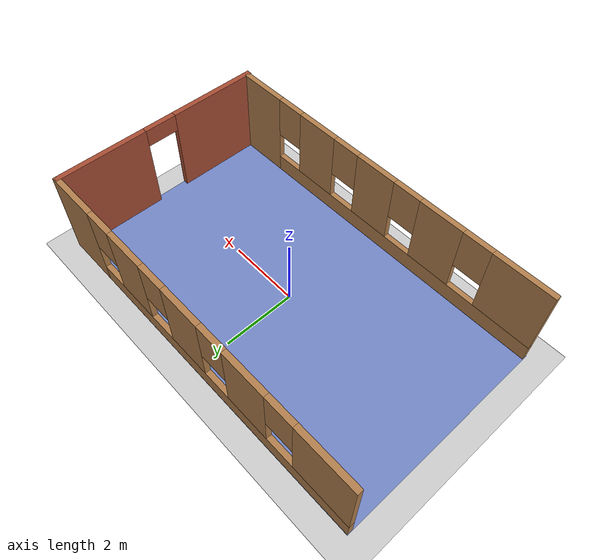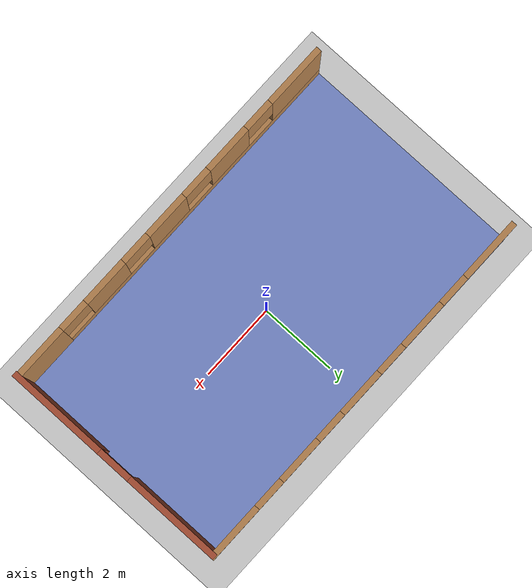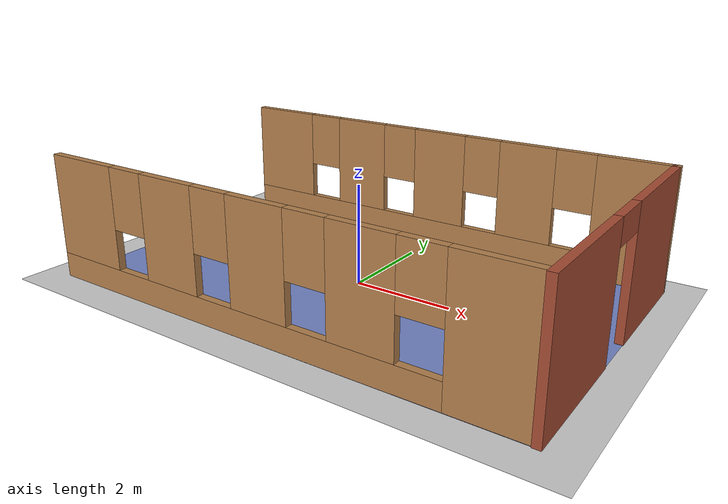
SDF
<sdf version="1.4">
 <world name="default">
  <include><uri>model://ground_plane</uri></include>
  <include><uri>model://sun</uri></include>
  <include><uri>model://custom_cafe</uri><pose>0.014318 -0.015657 0 0 0 -1.57</pose></include>
  <plugin name="ros_interface_plugin" filename="librotors_gazebo_ros_interface_plugin.so"/>
  <plugin name="ros_rl_interface_plugin" filename="librl_gazebo_interface_plugin.so"/>
  <spherical_coordinates>
   <surface_model>EARTH_WGS84</surface_model>
   <latitude_deg>47.3667</latitude_deg>
   <longitude_deg>8.5500</longitude_deg>
   <elevation>500.0</elevation>
   <heading_deg>0</heading_deg>
  </spherical_coordinates>
  <physics type="ode">
   <ode>
    <solver><type>quick</type><iters>1000</iters><sor>1.3</sor></solver>
    <constraints>
     <cfm>0</cfm>
     <erp>0.2</erp>
     <contact_max_correcting_vel>100</contact_max_correcting_vel>
     <contact_surface_layer>0.001</contact_surface_layer>
    </constraints>
   </ode>
   <max_step_size>0.01</max_step_size>
   <real_time_factor>1</real_time_factor>
   <real_time_update_rate>100</real_time_update_rate>
   <gravity>0 0 -9.8</gravity>
  </physics>
  <include><static>1</static><pose>0 0 0 0 0 1.5707</pose><uri>model://exploration_area2</uri></include>
 </world>
</sdf>

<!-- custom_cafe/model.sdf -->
<sdf version='1.6'>
  <model name='custom_cafe'>
    <pose frame=''>-0.303295 -1.89557 0 0 -0 0</pose>
    <link name='Wall_0'>
      <pose frame=''>0.0133 4.925 0 0 -0 0</pose>
      <visual name='Wall_0_Visual_0'>
        <pose frame=''>-1.72636 0 1.25 0 -0 0</pose>
        <geometry>
          <box>
            <size>2.54728 0.15 2.5</size>
          </box>
        </geometry>
        <material>
          <script>
            <uri>file://media/materials/scripts/gazebo.material</uri>
            <name>Gazebo/Bricks</name>
          </script>
          <ambient>1 1 1 1</ambient>
        </material>
        <meta>
          <layer>0</layer>
        </meta>
      </visual>
      <collision name='Wall_0_Collision_0'>
        <geometry>
          <box>
            <size>2.54728 0.15 2.5</size>
          </box>
        </geometry>
        <pose frame=''>-1.72636 0 1.25 0 -0 0</pose>
      </collision>
      <visual name='Wall_0_Visual_1'>
        <pose frame=''>1.72364 0 1.25 0 -0 0</pose>
        <geometry>
          <box>
            <size>2.55272 0.15 2.5</size>
          </box>
        </geometry>
        <material>
          <script>
            <uri>file://media/materials/scripts/gazebo.material</uri>
            <name>Gazebo/Bricks</name>
          </script>
          <ambient>1 1 1 1</ambient>
        </material>
        <meta>
          <layer>0</layer>
        </meta>
      </visual>
      <collision name='Wall_0_Collision_1'>
        <geometry>
          <box>
            <size>2.55272 0.15 2.5</size>
          </box>
        </geometry>
        <pose frame=''>1.72364 0 1.25 0 -0 0</pose>
      </collision>
      <visual name='Wall_0_Visual_2'>
        <pose frame=''>-0.002722 0 2.25 0 -0 0</pose>
        <geometry>
          <box>
            <size>0.9 0.15 0.5</size>
          </box>
        </geometry>
        <material>
          <script>
            <uri>file://media/materials/scripts/gazebo.material</uri>
            <name>Gazebo/Bricks</name>
          </script>
          <ambient>1 1 1 1</ambient>
        </material>
        <meta>
          <layer>0</layer>
        </meta>
      </visual>
      <collision name='Wall_0_Collision_2'>
        <geometry>
          <box>
            <size>0.9 0.15 0.5</size>
          </box>
        </geometry>
        <pose frame=''>-0.002722 0 2.25 0 -0 0</pose>
      </collision>
    </link>
    <link name='Wall_3'>
      <pose frame=''>2.9117 0 0 0 -0 -1.5708</pose>
      <visual name='Wall_3_Visual_0'>
        <pose frame=''>-4.25279 0 1.25 0 -0 0</pose>
        <geometry>
          <box>
            <size>1.49442 0.15 2.5</size>
          </box>
        </geometry>
        <material>
          <script>
            <uri>file://media/materials/scripts/gazebo.material</uri>
            <name>Gazebo/Wood</name>
          </script>
          <ambient>1 1 1 1</ambient>
        </material>
        <meta>
          <layer>0</layer>
        </meta>
      </visual>
      <collision name='Wall_3_Collision_0'>
        <geometry>
          <box>
            <size>1.49442 0.15 2.5</size>
          </box>
        </geometry>
        <pose frame=''>-4.25279 0 1.25 0 -0 0</pose>
      </collision>
      <visual name='Wall_3_Visual_1'>
        <pose frame=''>0.747208 0 0.25 0 -0 0</pose>
        <geometry>
          <box>
            <size>8.50558 0.15 0.5</size>
          </box>
        </geometry>
        <material>
          <script>
            <uri>file://media/materials/scripts/gazebo.material</uri>
            <name>Gazebo/Wood</name>
          </script>
          <ambient>1 1 1 1</ambient>
        </material>
        <meta>
          <layer>0</layer>
        </meta>
      </visual>
      <collision name='Wall_3_Collision_1'>
        <geometry>
          <box>
            <size>8.50558 0.15 0.5</size>
          </box>
        </geometry>
        <pose frame=''>0.747208 0 0.25 0 -0 0</pose>
      </collision>
      <visual name='Wall_3_Visual_2'>
        <pose frame=''>-2.09116 0 1.5 0 -0 0</pose>
        <geometry>
          <box>
            <size>1.22885 0.15 2</size>
          </box>
        </geometry>
        <material>
          <script>
            <uri>file://media/materials/scripts/gazebo.material</uri>
            <name>Gazebo/Wood</name>
          </script>
          <ambient>1 1 1 1</ambient>
        </material>
        <meta>
          <layer>0</layer>
        </meta>
      </visual>
      <collision name='Wall_3_Collision_2'>
        <geometry>
          <box>
            <size>1.22885 0.15 2</size>
          </box>
        </geometry>
        <pose frame=''>-2.09116 0 1.5 0 -0 0</pose>
      </collision>
      <visual name='Wall_3_Visual_3'>
        <pose frame=''>-0.079804 0 1.5 0 -0 0</pose>
        <geometry>
          <box>
            <size>1.19387 0.15 2</size>
          </box>
        </geometry>
        <material>
          <script>
            <uri>file://media/materials/scripts/gazebo.material</uri>
            <name>Gazebo/Wood</name>
          </script>
          <ambient>1 1 1 1</ambient>
        </material>
        <meta>
          <layer>0</layer>
        </meta>
      </visual>
      <collision name='Wall_3_Collision_3'>
        <geometry>
          <box>
            <size>1.19387 0.15 2</size>
          </box>
        </geometry>
        <pose frame=''>-0.079804 0 1.5 0 -0 0</pose>
      </collision>
      <visual name='Wall_3_Visual_4'>
        <pose frame=''>1.94451 0 1.5 0 -0 0</pose>
        <geometry>
          <box>
            <size>1.25475 0.15 2</size>
          </box>
        </geometry>
        <material>
          <script>
            <uri>file://media/materials/scripts/gazebo.material</uri>
            <name>Gazebo/Wood</name>
          </script>
          <ambient>1 1 1 1</ambient>
        </material>
        <meta>
          <layer>0</layer>
        </meta>
      </visual>
      <collision name='Wall_3_Collision_4'>
        <geometry>
          <box>
            <size>1.25475 0.15 2</size>
          </box>
        </geometry>
        <pose frame=''>1.94451 0 1.5 0 -0 0</pose>
      </collision>
      <visual name='Wall_3_Visual_5'>
        <pose frame=''>4.18594 0 1.5 0 -0 0</pose>
        <geometry>
          <box>
            <size>1.62812 0.15 2</size>
          </box>
        </geometry>
        <material>
          <script>
            <uri>file://media/materials/scripts/gazebo.material</uri>
            <name>Gazebo/Wood</name>
          </script>
          <ambient>1 1 1 1</ambient>
        </material>
        <meta>
          <layer>0</layer>
        </meta>
      </visual>
      <collision name='Wall_3_Collision_5'>
        <geometry>
          <box>
            <size>1.62812 0.15 2</size>
          </box>
        </geometry>
        <pose frame=''>4.18594 0 1.5 0 -0 0</pose>
      </collision>
      <visual name='Wall_3_Visual_6'>
        <pose frame=''>-3.10559 0 1.9 0 -0 0</pose>
        <geometry>
          <box>
            <size>0.8 0.15 1.2</size>
          </box>
        </geometry>
        <material>
          <script>
            <uri>file://media/materials/scripts/gazebo.material</uri>
            <name>Gazebo/Wood</name>
          </script>
          <ambient>1 1 1 1</ambient>
        </material>
        <meta>
          <layer>0</layer>
        </meta>
      </visual>
      <collision name='Wall_3_Collision_6'>
        <geometry>
          <box>
            <size>0.8 0.15 1.2</size>
          </box>
        </geometry>
        <pose frame=''>-3.10559 0 1.9 0 -0 0</pose>
      </collision>
      <visual name='Wall_3_Visual_7'>
        <pose frame=''>-1.07674 0 1.9 0 -0 0</pose>
        <geometry>
          <box>
            <size>0.8 0.15 1.2</size>
          </box>
        </geometry>
        <material>
          <script>
            <uri>file://media/materials/scripts/gazebo.material</uri>
            <name>Gazebo/Wood</name>
          </script>
          <ambient>1 1 1 1</ambient>
        </material>
        <meta>
          <layer>0</layer>
        </meta>
      </visual>
      <collision name='Wall_3_Collision_7'>
        <geometry>
          <box>
            <size>0.8 0.15 1.2</size>
          </box>
        </geometry>
        <pose frame=''>-1.07674 0 1.9 0 -0 0</pose>
      </collision>
      <visual name='Wall_3_Visual_8'>
        <pose frame=''>0.91713 0 1.9 0 -0 0</pose>
        <geometry>
          <box>
            <size>0.8 0.15 1.2</size>
          </box>
        </geometry>
        <material>
          <script>
            <uri>file://media/materials/scripts/gazebo.material</uri>
            <name>Gazebo/Wood</name>
          </script>
          <ambient>1 1 1 1</ambient>
        </material>
        <meta>
          <layer>0</layer>
        </meta>
      </visual>
      <collision name='Wall_3_Collision_8'>
        <geometry>
          <box>
            <size>0.8 0.15 1.2</size>
          </box>
        </geometry>
        <pose frame=''>0.91713 0 1.9 0 -0 0</pose>
      </collision>
      <visual name='Wall_3_Visual_9'>
        <pose frame=''>2.97188 0 1.9 0 -0 0</pose>
        <geometry>
          <box>
            <size>0.8 0.15 1.2</size>
          </box>
        </geometry>
        <material>
          <script>
            <uri>file://media/materials/scripts/gazebo.material</uri>
            <name>Gazebo/Wood</name>
          </script>
          <ambient>1 1 1 1</ambient>
        </material>
        <meta>
          <layer>0</layer>
        </meta>
      </visual>
      <collision name='Wall_3_Collision_9'>
        <geometry>
          <box>
            <size>0.8 0.15 1.2</size>
          </box>
        </geometry>
        <pose frame=''>2.97188 0 1.9 0 -0 0</pose>
      </collision>
    </link>
    <link name='Wall_5'>
      <pose frame=''>-2.9383 0 0 0 -0 -1.5708</pose>
      <visual name='Wall_5_Visual_0'>
        <pose frame=''>-4.25024 0 1.25 0 -0 0</pose>
        <geometry>
          <box>
            <size>1.49952 0.15 2.5</size>
          </box>
        </geometry>
        <material>
          <script>
            <uri>file://media/materials/scripts/gazebo.material</uri>
            <name>Gazebo/Wood</name>
          </script>
          <ambient>1 1 1 1</ambient>
        </material>
        <meta>
          <layer>0</layer>
        </meta>
      </visual>
      <collision name='Wall_5_Collision_0'>
        <geometry>
          <box>
            <size>1.49952 0.15 2.5</size>
          </box>
        </geometry>
        <pose frame=''>-4.25024 0 1.25 0 -0 0</pose>
      </collision>
      <visual name='Wall_5_Visual_1'>
        <pose frame=''>0.749761 0 0.25 0 -0 0</pose>
        <geometry>
          <box>
            <size>8.50048 0.15 0.5</size>
          </box>
        </geometry>
        <material>
          <script>
            <uri>file://media/materials/scripts/gazebo.material</uri>
            <name>Gazebo/Wood</name>
          </script>
          <ambient>1 1 1 1</ambient>
        </material>
        <meta>
          <layer>0</layer>
        </meta>
      </visual>
      <collision name='Wall_5_Collision_1'>
        <geometry>
          <box>
            <size>8.50048 0.15 0.5</size>
          </box>
        </geometry>
        <pose frame=''>0.749761 0 0.25 0 -0 0</pose>
      </collision>
      <visual name='Wall_5_Visual_2'>
        <pose frame=''>-2.10199 0 1.5 0 -0 0</pose>
        <geometry>
          <box>
            <size>1.19697 0.15 2</size>
          </box>
        </geometry>
        <material>
          <script>
            <uri>file://media/materials/scripts/gazebo.material</uri>
            <name>Gazebo/Wood</name>
          </script>
          <ambient>1 1 1 1</ambient>
        </material>
        <meta>
          <layer>0</layer>
        </meta>
      </visual>
      <collision name='Wall_5_Collision_2'>
        <geometry>
          <box>
            <size>1.19697 0.15 2</size>
          </box>
        </geometry>
        <pose frame=''>-2.10199 0 1.5 0 -0 0</pose>
      </collision>
      <visual name='Wall_5_Visual_3'>
        <pose frame=''>-0.097152 0 1.5 0 -0 0</pose>
        <geometry>
          <box>
            <size>1.2127 0.15 2</size>
          </box>
        </geometry>
        <material>
          <script>
            <uri>file://media/materials/scripts/gazebo.material</uri>
            <name>Gazebo/Wood</name>
          </script>
          <ambient>1 1 1 1</ambient>
        </material>
        <meta>
          <layer>0</layer>
        </meta>
      </visual>
      <collision name='Wall_5_Collision_3'>
        <geometry>
          <box>
            <size>1.2127 0.15 2</size>
          </box>
        </geometry>
        <pose frame=''>-0.097152 0 1.5 0 -0 0</pose>
      </collision>
      <visual name='Wall_5_Visual_4'>
        <pose frame=''>1.94054 0 1.5 0 -0 0</pose>
        <geometry>
          <box>
            <size>1.26269 0.15 2</size>
          </box>
        </geometry>
        <material>
          <script>
            <uri>file://media/materials/scripts/gazebo.material</uri>
            <name>Gazebo/Wood</name>
          </script>
          <ambient>1 1 1 1</ambient>
        </material>
        <meta>
          <layer>0</layer>
        </meta>
      </visual>
      <collision name='Wall_5_Collision_4'>
        <geometry>
          <box>
            <size>1.26269 0.15 2</size>
          </box>
        </geometry>
        <pose frame=''>1.94054 0 1.5 0 -0 0</pose>
      </collision>
      <visual name='Wall_5_Visual_5'>
        <pose frame=''>4.18594 0 1.5 0 -0 0</pose>
        <geometry>
          <box>
            <size>1.62812 0.15 2</size>
          </box>
        </geometry>
        <material>
          <script>
            <uri>file://media/materials/scripts/gazebo.material</uri>
            <name>Gazebo/Wood</name>
          </script>
          <ambient>1 1 1 1</ambient>
        </material>
        <meta>
          <layer>0</layer>
        </meta>
      </visual>
      <collision name='Wall_5_Collision_5'>
        <geometry>
          <box>
            <size>1.62812 0.15 2</size>
          </box>
        </geometry>
        <pose frame=''>4.18594 0 1.5 0 -0 0</pose>
      </collision>
      <visual name='Wall_5_Visual_6'>
        <pose frame=''>-3.10048 0 1.9 0 -0 0</pose>
        <geometry>
          <box>
            <size>0.8 0.15 1.2</size>
          </box>
        </geometry>
        <material>
          <script>
            <uri>file://media/materials/scripts/gazebo.material</uri>
            <name>Gazebo/Wood</name>
          </script>
          <ambient>1 1 1 1</ambient>
        </material>
        <meta>
          <layer>0</layer>
        </meta>
      </visual>
      <collision name='Wall_5_Collision_6'>
        <geometry>
          <box>
            <size>0.8 0.15 1.2</size>
          </box>
        </geometry>
        <pose frame=''>-3.10048 0 1.9 0 -0 0</pose>
      </collision>
      <visual name='Wall_5_Visual_7'>
        <pose frame=''>-1.1035 0 1.9 0 -0 0</pose>
        <geometry>
          <box>
            <size>0.8 0.15 1.2</size>
          </box>
        </geometry>
        <material>
          <script>
            <uri>file://media/materials/scripts/gazebo.material</uri>
            <name>Gazebo/Wood</name>
          </script>
          <ambient>1 1 1 1</ambient>
        </material>
        <meta>
          <layer>0</layer>
        </meta>
      </visual>
      <collision name='Wall_5_Collision_7'>
        <geometry>
          <box>
            <size>0.8 0.15 1.2</size>
          </box>
        </geometry>
        <pose frame=''>-1.1035 0 1.9 0 -0 0</pose>
      </collision>
      <visual name='Wall_5_Visual_8'>
        <pose frame=''>0.909198 0 1.9 0 -0 0</pose>
        <geometry>
          <box>
            <size>0.8 0.15 1.2</size>
          </box>
        </geometry>
        <material>
          <script>
            <uri>file://media/materials/scripts/gazebo.material</uri>
            <name>Gazebo/Wood</name>
          </script>
          <ambient>1 1 1 1</ambient>
        </material>
        <meta>
          <layer>0</layer>
        </meta>
      </visual>
      <collision name='Wall_5_Collision_8'>
        <geometry>
          <box>
            <size>0.8 0.15 1.2</size>
          </box>
        </geometry>
        <pose frame=''>0.909198 0 1.9 0 -0 0</pose>
      </collision>
      <visual name='Wall_5_Visual_9'>
        <pose frame=''>2.97188 0 1.9 0 -0 0</pose>
        <geometry>
          <box>
            <size>0.8 0.15 1.2</size>
          </box>
        </geometry>
        <material>
          <script>
            <uri>file://media/materials/scripts/gazebo.material</uri>
            <name>Gazebo/Wood</name>
          </script>
          <ambient>1 1 1 1</ambient>
        </material>
        <meta>
          <layer>0</layer>
        </meta>
      </visual>
      <collision name='Wall_5_Collision_9'>
        <geometry>
          <box>
            <size>0.8 0.15 1.2</size>
          </box>
        </geometry>
        <pose frame=''>2.97188 0 1.9 0 -0 0</pose>
      </collision>
    </link>
    <static>1</static>
  </model>
</sdf>

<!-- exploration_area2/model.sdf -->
<sdf version='1.5'>
  <model name='exploration_area'>
    <link name='link'>
      <pose frame=''>0 0 0 0 -0 0</pose>
      <inertial>
        <mass>1</mass>
        <inertia>
          <ixx>0.145833</ixx>
          <ixy>0</ixy>
          <ixz>0</ixz>
          <iyy>0.145833</iyy>
          <iyz>0</iyz>
          <izz>0.125</izz>
        </inertia>
        <pose frame=''>0 0 0 0 -0 0</pose>
      </inertial>
      <self_collide>0</self_collide>
      <kinematic>0</kinematic>
      <gravity>1</gravity>
      <visual name='visual'>
        <geometry>
          <box>
		<size>6 10 .005</size>
          </box>
        </geometry>
        <material>
          <script>
            <name>Gazebo/blue</name>
            <uri>file://media/materials/scripts/gazebo.material</uri>
          </script>
          <ambient>0.3 0.3 0.3 1</ambient>
          <diffuse>0.2 0.7 0.7 1</diffuse>
          <specular>0.01 0.01 0.01 1</specular>
          <emissive>0.2 0 0.7 1</emissive>
          <shader type='vertex'>
            <normal_map>__default__</normal_map>
          </shader>
        </material>
        <pose frame=''>0 0 0 0 -0 0</pose>
        <cast_shadows>1</cast_shadows>
        <transparency>0.5</transparency>
      </visual>
    </link>
    <static>0</static>
    <allow_auto_disable>1</allow_auto_disable>
  </model>
</sdf>
